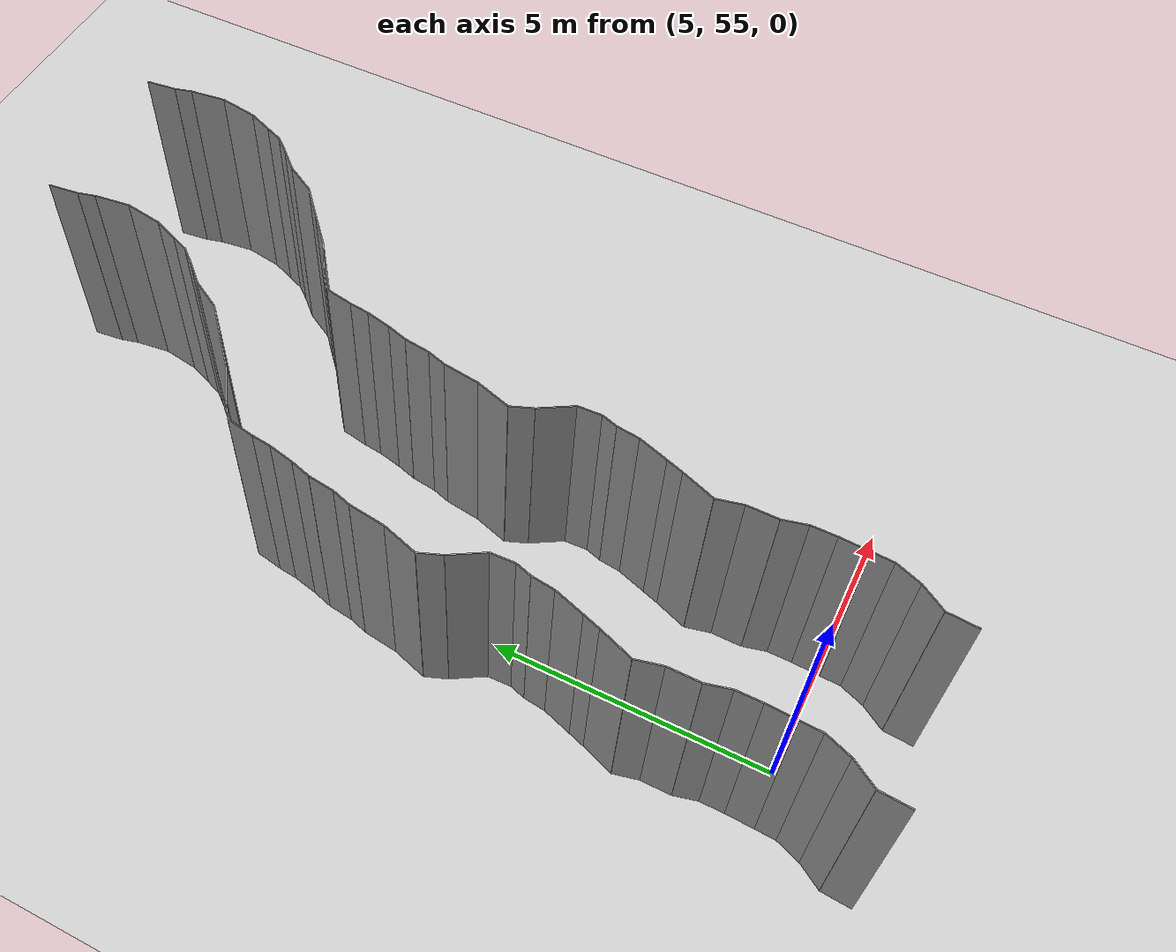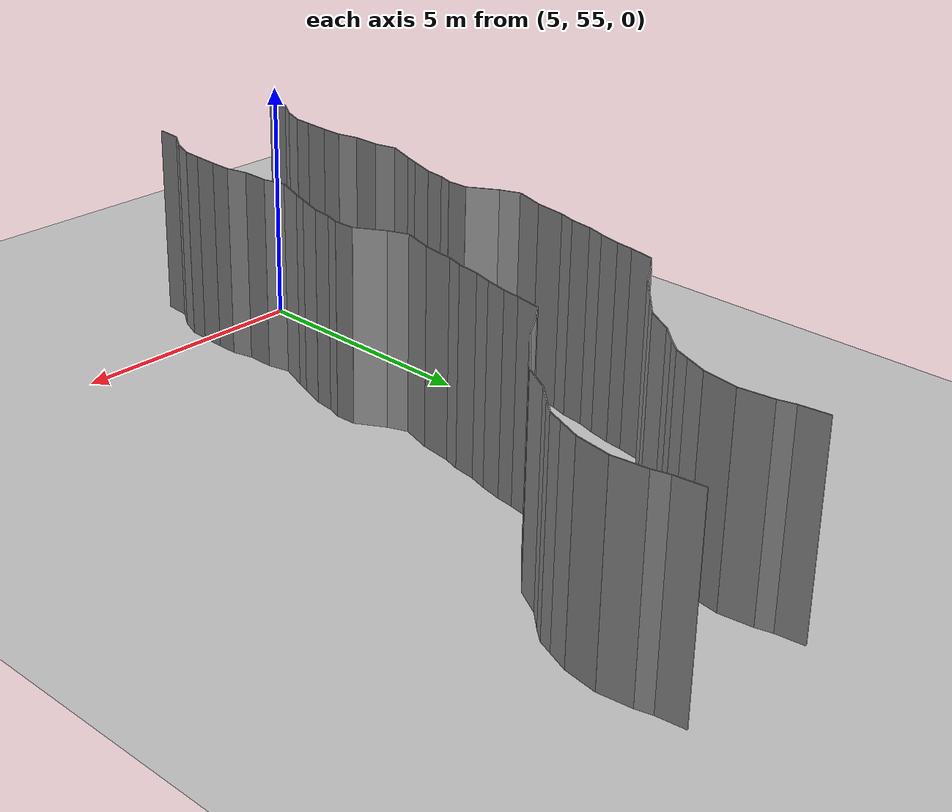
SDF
<sdf version="1.6">
 <world name="default">
  <model name="ground_plane">
   <static>1</static>
   <link name="link">
    <collision name="collision">
     <geometry><plane><normal>0 0 1</normal><size>200 200</size></plane></geometry>
     <surface><friction><ode><mu>100</mu><mu2>50</mu2></ode></friction></surface>
    </collision>
    <visual name="visual">
     <cast_shadows>0</cast_shadows>
     <geometry><plane><normal>0 0 1</normal><size>200 200</size></plane></geometry>
     <material>
      <script><uri>file://media/materials/scripts/gazebo.material</uri><name>Gazebo/Grey</name></script>
     </material>
    </visual>
   </link>
   <pose>0 100 0 0 -0 0</pose>
  </model>
  <model name="wall_224">
   <static>1</static>
   <pose>3.528602064961862 53.39156502885938 2 0 0 -0.06833943540551042</pose>
   <link name="link">
    <collision name="collision"><geometry><box><size>0.02 0.540682157796 4</size></box></geometry></collision>
    <visual name="visual">
     <material>
      <script><name>Gazebo/Grey</name><uri>file://media/materials/scripts/gazebo.material</uri></script>
     </material>
     <geometry><box><size>0.02 0.540682157796 4</size></box></geometry>
    </visual>
   </link>
  </model>
  <model name="wall_225">
   <static>1</static>
   <pose>6.528602064961862 53.39156502885938 2 0 0 -0.06833943540551042</pose>
   <link name="link">
    <collision name="collision"><geometry><box><size>0.02 0.540682157796 4</size></box></geometry></collision>
    <visual name="visual">
     <material>
      <script><name>Gazebo/Grey</name><uri>file://media/materials/scripts/gazebo.material</uri></script>
     </material>
     <geometry><box><size>0.02 0.540682157796 4</size></box></geometry>
    </visual>
   </link>
  </model>
  <model name="wall_226">
   <static>1</static>
   <pose>3.6866716017015992 53.87652328336533 2 0 0 -0.5753870255343632</pose>
   <link name="link">
    <collision name="collision"><geometry><box><size>0.02 0.513117743096 4</size></box></geometry></collision>
    <visual name="visual">
     <material>
      <script><name>Gazebo/Grey</name><uri>file://media/materials/scripts/gazebo.material</uri></script>
     </material>
     <geometry><box><size>0.02 0.513117743096 4</size></box></geometry>
    </visual>
   </link>
  </model>
  <model name="wall_227">
   <static>1</static>
   <pose>6.686671601701599 53.87652328336533 2 0 0 -0.5753870255343632</pose>
   <link name="link">
    <collision name="collision"><geometry><box><size>0.02 0.513117743096 4</size></box></geometry></collision>
    <visual name="visual">
     <material>
      <script><name>Gazebo/Grey</name><uri>file://media/materials/scripts/gazebo.material</uri></script>
     </material>
     <geometry><box><size>0.02 0.513117743096 4</size></box></geometry>
    </visual>
   </link>
  </model>
  <model name="wall_228">
   <static>1</static>
   <pose>3.9110661200531367 54.31562138466196 2 0 0 -0.3620637215636014</pose>
   <link name="link">
    <collision name="collision"><geometry><box><size>0.02 0.478737353523 4</size></box></geometry></collision>
    <visual name="visual">
     <material>
      <script><name>Gazebo/Grey</name><uri>file://media/materials/scripts/gazebo.material</uri></script>
     </material>
     <geometry><box><size>0.02 0.478737353523 4</size></box></geometry>
    </visual>
   </link>
  </model>
  <model name="wall_229">
   <static>1</static>
   <pose>6.911066120053137 54.31562138466196 2 0 0 -0.3620637215636014</pose>
   <link name="link">
    <collision name="collision"><geometry><box><size>0.02 0.478737353523 4</size></box></geometry></collision>
    <visual name="visual">
     <material>
      <script><name>Gazebo/Grey</name><uri>file://media/materials/scripts/gazebo.material</uri></script>
     </material>
     <geometry><box><size>0.02 0.478737353523 4</size></box></geometry>
    </visual>
   </link>
  </model>
  <model name="wall_230">
   <static>1</static>
   <pose>4.004229657695501 54.72682308637907 2 0 0 -0.04468811136336056</pose>
   <link name="link">
    <collision name="collision"><geometry><box><size>0.02 0.375078087131 4</size></box></geometry></collision>
    <visual name="visual">
     <material>
      <script><name>Gazebo/Grey</name><uri>file://media/materials/scripts/gazebo.material</uri></script>
     </material>
     <geometry><box><size>0.02 0.375078087131 4</size></box></geometry>
    </visual>
   </link>
  </model>
  <model name="wall_231">
   <static>1</static>
   <pose>7.004229657695501 54.72682308637907 2 0 0 -0.04468811136336056</pose>
   <link name="link">
    <collision name="collision"><geometry><box><size>0.02 0.375078087131 4</size></box></geometry></collision>
    <visual name="visual">
     <material>
      <script><name>Gazebo/Grey</name><uri>file://media/materials/scripts/gazebo.material</uri></script>
     </material>
     <geometry><box><size>0.02 0.375078087131 4</size></box></geometry>
    </visual>
   </link>
  </model>
  <model name="wall_232">
   <static>1</static>
   <pose>4.023659175816504 55.169290138721486 2 0 0 -0.043292734498848684</pose>
   <link name="link">
    <collision name="collision"><geometry><box><size>0.02 0.51070900202 4</size></box></geometry></collision>
    <visual name="visual">
     <material>
      <script><name>Gazebo/Grey</name><uri>file://media/materials/scripts/gazebo.material</uri></script>
     </material>
     <geometry><box><size>0.02 0.51070900202 4</size></box></geometry>
    </visual>
   </link>
  </model>
  <model name="wall_233">
   <static>1</static>
   <pose>7.023659175816504 55.169290138721486 2 0 0 -0.043292734498848684</pose>
   <link name="link">
    <collision name="collision"><geometry><box><size>0.02 0.51070900202 4</size></box></geometry></collision>
    <visual name="visual">
     <material>
      <script><name>Gazebo/Grey</name><uri>file://media/materials/scripts/gazebo.material</uri></script>
     </material>
     <geometry><box><size>0.02 0.51070900202 4</size></box></geometry>
    </visual>
   </link>
  </model>
  <model name="wall_234">
   <static>1</static>
   <pose>4.0342566573391725 55.644065890135025 2 0 0 0.002067096349445945</pose>
   <link name="link">
    <collision name="collision"><geometry><box><size>0.02 0.439321965593 4</size></box></geometry></collision>
    <visual name="visual">
     <material>
      <script><name>Gazebo/Grey</name><uri>file://media/materials/scripts/gazebo.material</uri></script>
     </material>
     <geometry><box><size>0.02 0.439321965593 4</size></box></geometry>
    </visual>
   </link>
  </model>
  <model name="wall_235">
   <static>1</static>
   <pose>7.0342566573391725 55.644065890135025 2 0 0 0.002067096349445945</pose>
   <link name="link">
    <collision name="collision"><geometry><box><size>0.02 0.439321965593 4</size></box></geometry></collision>
    <visual name="visual">
     <material>
      <script><name>Gazebo/Grey</name><uri>file://media/materials/scripts/gazebo.material</uri></script>
     </material>
     <geometry><box><size>0.02 0.439321965593 4</size></box></geometry>
    </visual>
   </link>
  </model>
  <model name="wall_236">
   <static>1</static>
   <pose>3.9800580914950845 56.07680824205318 2 0 0 0.2470714130610524</pose>
   <link name="link">
    <collision name="collision"><geometry><box><size>0.02 0.43951037194 4</size></box></geometry></collision>
    <visual name="visual">
     <material>
      <script><name>Gazebo/Grey</name><uri>file://media/materials/scripts/gazebo.material</uri></script>
     </material>
     <geometry><box><size>0.02 0.43951037194 4</size></box></geometry>
    </visual>
   </link>
  </model>
  <model name="wall_237">
   <static>1</static>
   <pose>6.980058091495085 56.07680824205318 2 0 0 0.2470714130610524</pose>
   <link name="link">
    <collision name="collision"><geometry><box><size>0.02 0.43951037194 4</size></box></geometry></collision>
    <visual name="visual">
     <material>
      <script><name>Gazebo/Grey</name><uri>file://media/materials/scripts/gazebo.material</uri></script>
     </material>
     <geometry><box><size>0.02 0.43951037194 4</size></box></geometry>
    </visual>
   </link>
  </model>
  <model name="wall_238">
   <static>1</static>
   <pose>3.9268968259553887 56.56647347405353 2 0 0 -0.0021087287274510333</pose>
   <link name="link">
    <collision name="collision"><geometry><box><size>0.02 0.553168017067 4</size></box></geometry></collision>
    <visual name="visual">
     <material>
      <script><name>Gazebo/Grey</name><uri>file://media/materials/scripts/gazebo.material</uri></script>
     </material>
     <geometry><box><size>0.02 0.553168017067 4</size></box></geometry>
    </visual>
   </link>
  </model>
  <model name="wall_239">
   <static>1</static>
   <pose>6.926896825955389 56.56647347405353 2 0 0 -0.0021087287274510333</pose>
   <link name="link">
    <collision name="collision"><geometry><box><size>0.02 0.553168017067 4</size></box></geometry></collision>
    <visual name="visual">
     <material>
      <script><name>Gazebo/Grey</name><uri>file://media/materials/scripts/gazebo.material</uri></script>
     </material>
     <geometry><box><size>0.02 0.553168017067 4</size></box></geometry>
    </visual>
   </link>
  </model>
  <model name="wall_240">
   <static>1</static>
   <pose>3.8729214862886177 57.07105964475495 2 0 0 0.23487269232823726</pose>
   <link name="link">
    <collision name="collision"><geometry><box><size>0.02 0.468879110266 4</size></box></geometry></collision>
    <visual name="visual">
     <material>
      <script><name>Gazebo/Grey</name><uri>file://media/materials/scripts/gazebo.material</uri></script>
     </material>
     <geometry><box><size>0.02 0.468879110266 4</size></box></geometry>
    </visual>
   </link>
  </model>
  <model name="wall_241">
   <static>1</static>
   <pose>6.872921486288618 57.07105964475495 2 0 0 0.23487269232823726</pose>
   <link name="link">
    <collision name="collision"><geometry><box><size>0.02 0.468879110266 4</size></box></geometry></collision>
    <visual name="visual">
     <material>
      <script><name>Gazebo/Grey</name><uri>file://media/materials/scripts/gazebo.material</uri></script>
     </material>
     <geometry><box><size>0.02 0.468879110266 4</size></box></geometry>
    </visual>
   </link>
  </model>
  <model name="wall_242">
   <static>1</static>
   <pose>3.929274676599654 57.59708809742566 2 0 0 -0.3562741671204502</pose>
   <link name="link">
    <collision name="collision"><geometry><box><size>0.02 0.635989698208 4</size></box></geometry></collision>
    <visual name="visual">
     <material>
      <script><name>Gazebo/Grey</name><uri>file://media/materials/scripts/gazebo.material</uri></script>
     </material>
     <geometry><box><size>0.02 0.635989698208 4</size></box></geometry>
    </visual>
   </link>
  </model>
  <model name="wall_243">
   <static>1</static>
   <pose>6.929274676599654 57.59708809742566 2 0 0 -0.3562741671204502</pose>
   <link name="link">
    <collision name="collision"><geometry><box><size>0.02 0.635989698208 4</size></box></geometry></collision>
    <visual name="visual">
     <material>
      <script><name>Gazebo/Grey</name><uri>file://media/materials/scripts/gazebo.material</uri></script>
     </material>
     <geometry><box><size>0.02 0.635989698208 4</size></box></geometry>
    </visual>
   </link>
  </model>
  <model name="wall_244">
   <static>1</static>
   <pose>4.090060201565586 58.045175102419435 2 0 0 -0.32087052603320987</pose>
   <link name="link">
    <collision name="collision"><geometry><box><size>0.02 0.316264408421 4</size></box></geometry></collision>
    <visual name="visual">
     <material>
      <script><name>Gazebo/Grey</name><uri>file://media/materials/scripts/gazebo.material</uri></script>
     </material>
     <geometry><box><size>0.02 0.316264408421 4</size></box></geometry>
    </visual>
   </link>
  </model>
  <model name="wall_245">
   <static>1</static>
   <pose>7.090060201565586 58.045175102419435 2 0 0 -0.32087052603320987</pose>
   <link name="link">
    <collision name="collision"><geometry><box><size>0.02 0.316264408421 4</size></box></geometry></collision>
    <visual name="visual">
     <material>
      <script><name>Gazebo/Grey</name><uri>file://media/materials/scripts/gazebo.material</uri></script>
     </material>
     <geometry><box><size>0.02 0.316264408421 4</size></box></geometry>
    </visual>
   </link>
  </model>
  <model name="wall_246">
   <static>1</static>
   <pose>4.228202553277251 58.46247019786226 2 0 0 -0.319022406863681</pose>
   <link name="link">
    <collision name="collision"><geometry><box><size>0.02 0.562868478057 4</size></box></geometry></collision>
    <visual name="visual">
     <material>
      <script><name>Gazebo/Grey</name><uri>file://media/materials/scripts/gazebo.material</uri></script>
     </material>
     <geometry><box><size>0.02 0.562868478057 4</size></box></geometry>
    </visual>
   </link>
  </model>
  <model name="wall_247">
   <static>1</static>
   <pose>7.228202553277251 58.46247019786226 2 0 0 -0.319022406863681</pose>
   <link name="link">
    <collision name="collision"><geometry><box><size>0.02 0.562868478057 4</size></box></geometry></collision>
    <visual name="visual">
     <material>
      <script><name>Gazebo/Grey</name><uri>file://media/materials/scripts/gazebo.material</uri></script>
     </material>
     <geometry><box><size>0.02 0.562868478057 4</size></box></geometry>
    </visual>
   </link>
  </model>
  <model name="wall_248">
   <static>1</static>
   <pose>4.341280597745392 58.93304401421474 2 0 0 -0.12140957032669356</pose>
   <link name="link">
    <collision name="collision"><geometry><box><size>0.02 0.409695910464 4</size></box></geometry></collision>
    <visual name="visual">
     <material>
      <script><name>Gazebo/Grey</name><uri>file://media/materials/scripts/gazebo.material</uri></script>
     </material>
     <geometry><box><size>0.02 0.409695910464 4</size></box></geometry>
    </visual>
   </link>
  </model>
  <model name="wall_249">
   <static>1</static>
   <pose>7.341280597745392 58.93304401421474 2 0 0 -0.12140957032669356</pose>
   <link name="link">
    <collision name="collision"><geometry><box><size>0.02 0.409695910464 4</size></box></geometry></collision>
    <visual name="visual">
     <material>
      <script><name>Gazebo/Grey</name><uri>file://media/materials/scripts/gazebo.material</uri></script>
     </material>
     <geometry><box><size>0.02 0.409695910464 4</size></box></geometry>
    </visual>
   </link>
  </model>
  <model name="wall_250">
   <static>1</static>
   <pose>4.4108826629741165 59.279692127652034 2 0 0 -0.3029411154012513</pose>
   <link name="link">
    <collision name="collision"><geometry><box><size>0.02 0.300290389765 4</size></box></geometry></collision>
    <visual name="visual">
     <material>
      <script><name>Gazebo/Grey</name><uri>file://media/materials/scripts/gazebo.material</uri></script>
     </material>
     <geometry><box><size>0.02 0.300290389765 4</size></box></geometry>
    </visual>
   </link>
  </model>
  <model name="wall_251">
   <static>1</static>
   <pose>7.4108826629741165 59.279692127652034 2 0 0 -0.3029411154012513</pose>
   <link name="link">
    <collision name="collision"><geometry><box><size>0.02 0.300290389765 4</size></box></geometry></collision>
    <visual name="visual">
     <material>
      <script><name>Gazebo/Grey</name><uri>file://media/materials/scripts/gazebo.material</uri></script>
     </material>
     <geometry><box><size>0.02 0.300290389765 4</size></box></geometry>
    </visual>
   </link>
  </model>
  <model name="wall_252">
   <static>1</static>
   <pose>4.447151146654677 59.63689699383404 2 0 0 0.03983054280648641</pose>
   <link name="link">
    <collision name="collision"><geometry><box><size>0.02 0.428133171965 4</size></box></geometry></collision>
    <visual name="visual">
     <material>
      <script><name>Gazebo/Grey</name><uri>file://media/materials/scripts/gazebo.material</uri></script>
     </material>
     <geometry><box><size>0.02 0.428133171965 4</size></box></geometry>
    </visual>
   </link>
  </model>
  <model name="wall_253">
   <static>1</static>
   <pose>7.447151146654677 59.63689699383404 2 0 0 0.03983054280648641</pose>
   <link name="link">
    <collision name="collision"><geometry><box><size>0.02 0.428133171965 4</size></box></geometry></collision>
    <visual name="visual">
     <material>
      <script><name>Gazebo/Grey</name><uri>file://media/materials/scripts/gazebo.material</uri></script>
     </material>
     <geometry><box><size>0.02 0.428133171965 4</size></box></geometry>
    </visual>
   </link>
  </model>
  <model name="wall_254">
   <static>1</static>
   <pose>4.268252847930529 60.131867418762894 2 0 0 0.5449329058073904</pose>
   <link name="link">
    <collision name="collision"><geometry><box><size>0.02 0.657357549259 4</size></box></geometry></collision>
    <visual name="visual">
     <material>
      <script><name>Gazebo/Grey</name><uri>file://media/materials/scripts/gazebo.material</uri></script>
     </material>
     <geometry><box><size>0.02 0.657357549259 4</size></box></geometry>
    </visual>
   </link>
  </model>
  <model name="wall_255">
   <static>1</static>
   <pose>7.268252847930529 60.131867418762894 2 0 0 0.5449329058073904</pose>
   <link name="link">
    <collision name="collision"><geometry><box><size>0.02 0.657357549259 4</size></box></geometry></collision>
    <visual name="visual">
     <material>
      <script><name>Gazebo/Grey</name><uri>file://media/materials/scripts/gazebo.material</uri></script>
     </material>
     <geometry><box><size>0.02 0.657357549259 4</size></box></geometry>
    </visual>
   </link>
  </model>
  <model name="wall_256">
   <static>1</static>
   <pose>4.018874838290384 60.60982653740761 2 0 0 0.3815989822524065</pose>
   <link name="link">
    <collision name="collision"><geometry><box><size>0.02 0.424290025185 4</size></box></geometry></collision>
    <visual name="visual">
     <material>
      <script><name>Gazebo/Grey</name><uri>file://media/materials/scripts/gazebo.material</uri></script>
     </material>
     <geometry><box><size>0.02 0.424290025185 4</size></box></geometry>
    </visual>
   </link>
  </model>
  <model name="wall_257">
   <static>1</static>
   <pose>7.018874838290384 60.60982653740761 2 0 0 0.3815989822524065</pose>
   <link name="link">
    <collision name="collision"><geometry><box><size>0.02 0.424290025185 4</size></box></geometry></collision>
    <visual name="visual">
     <material>
      <script><name>Gazebo/Grey</name><uri>file://media/materials/scripts/gazebo.material</uri></script>
     </material>
     <geometry><box><size>0.02 0.424290025185 4</size></box></geometry>
    </visual>
   </link>
  </model>
  <model name="wall_258">
   <static>1</static>
   <pose>4.0380190093582184 61.12320005678419 2 0 0 -0.3007115435823998</pose>
   <link name="link">
    <collision name="collision"><geometry><box><size>0.02 0.662714724367 4</size></box></geometry></collision>
    <visual name="visual">
     <material>
      <script><name>Gazebo/Grey</name><uri>file://media/materials/scripts/gazebo.material</uri></script>
     </material>
     <geometry><box><size>0.02 0.662714724367 4</size></box></geometry>
    </visual>
   </link>
  </model>
  <model name="wall_259">
   <static>1</static>
   <pose>7.0380190093582184 61.12320005678419 2 0 0 -0.3007115435823998</pose>
   <link name="link">
    <collision name="collision"><geometry><box><size>0.02 0.662714724367 4</size></box></geometry></collision>
    <visual name="visual">
     <material>
      <script><name>Gazebo/Grey</name><uri>file://media/materials/scripts/gazebo.material</uri></script>
     </material>
     <geometry><box><size>0.02 0.662714724367 4</size></box></geometry>
    </visual>
   </link>
  </model>
  <model name="wall_260">
   <static>1</static>
   <pose>4.1783843597997405 61.76304033441299 2 0 0 -0.12982706883605621</pose>
   <link name="link">
    <collision name="collision"><geometry><box><size>0.02 0.652193174391 4</size></box></geometry></collision>
    <visual name="visual">
     <material>
      <script><name>Gazebo/Grey</name><uri>file://media/materials/scripts/gazebo.material</uri></script>
     </material>
     <geometry><box><size>0.02 0.652193174391 4</size></box></geometry>
    </visual>
   </link>
  </model>
  <model name="wall_261">
   <static>1</static>
   <pose>7.1783843597997405 61.76304033441299 2 0 0 -0.12982706883605621</pose>
   <link name="link">
    <collision name="collision"><geometry><box><size>0.02 0.652193174391 4</size></box></geometry></collision>
    <visual name="visual">
     <material>
      <script><name>Gazebo/Grey</name><uri>file://media/materials/scripts/gazebo.material</uri></script>
     </material>
     <geometry><box><size>0.02 0.652193174391 4</size></box></geometry>
    </visual>
   </link>
  </model>
  <model name="wall_262">
   <static>1</static>
   <pose>4.271302788716039 62.25195672169262 2 0 0 -0.29716470033785963</pose>
   <link name="link">
    <collision name="collision"><geometry><box><size>0.02 0.346306701397 4</size></box></geometry></collision>
    <visual name="visual">
     <material>
      <script><name>Gazebo/Grey</name><uri>file://media/materials/scripts/gazebo.material</uri></script>
     </material>
     <geometry><box><size>0.02 0.346306701397 4</size></box></geometry>
    </visual>
   </link>
  </model>
  <model name="wall_263">
   <static>1</static>
   <pose>7.271302788716039 62.25195672169262 2 0 0 -0.29716470033785963</pose>
   <link name="link">
    <collision name="collision"><geometry><box><size>0.02 0.346306701397 4</size></box></geometry></collision>
    <visual name="visual">
     <material>
      <script><name>Gazebo/Grey</name><uri>file://media/materials/scripts/gazebo.material</uri></script>
     </material>
     <geometry><box><size>0.02 0.346306701397 4</size></box></geometry>
    </visual>
   </link>
  </model>
  <model name="wall_264">
   <static>1</static>
   <pose>4.352003141832562 62.649567837336434 2 0 0 -0.1285678568704608</pose>
   <link name="link">
    <collision name="collision"><geometry><box><size>0.02 0.467956228876 4</size></box></geometry></collision>
    <visual name="visual">
     <material>
      <script><name>Gazebo/Grey</name><uri>file://media/materials/scripts/gazebo.material</uri></script>
     </material>
     <geometry><box><size>0.02 0.467956228876 4</size></box></geometry>
    </visual>
   </link>
  </model>
  <model name="wall_265">
   <static>1</static>
   <pose>7.352003141832562 62.649567837336434 2 0 0 -0.1285678568704608</pose>
   <link name="link">
    <collision name="collision"><geometry><box><size>0.02 0.467956228876 4</size></box></geometry></collision>
    <visual name="visual">
     <material>
      <script><name>Gazebo/Grey</name><uri>file://media/materials/scripts/gazebo.material</uri></script>
     </material>
     <geometry><box><size>0.02 0.467956228876 4</size></box></geometry>
    </visual>
   </link>
  </model>
  <model name="wall_266">
   <static>1</static>
   <pose>4.435221240937296 63.063243304691895 2 0 0 -0.28503106107147885</pose>
   <link name="link">
    <collision name="collision"><geometry><box><size>0.02 0.378529529389 4</size></box></geometry></collision>
    <visual name="visual">
     <material>
      <script><name>Gazebo/Grey</name><uri>file://media/materials/scripts/gazebo.material</uri></script>
     </material>
     <geometry><box><size>0.02 0.378529529389 4</size></box></geometry>
    </visual>
   </link>
  </model>
  <model name="wall_267">
   <static>1</static>
   <pose>7.435221240937296 63.063243304691895 2 0 0 -0.28503106107147885</pose>
   <link name="link">
    <collision name="collision"><geometry><box><size>0.02 0.378529529389 4</size></box></geometry></collision>
    <visual name="visual">
     <material>
      <script><name>Gazebo/Grey</name><uri>file://media/materials/scripts/gazebo.material</uri></script>
     </material>
     <geometry><box><size>0.02 0.378529529389 4</size></box></geometry>
    </visual>
   </link>
  </model>
  <model name="wall_268">
   <static>1</static>
   <pose>4.537605531496459 63.468987772844045 2 0 0 -0.21595410613075985</pose>
   <link name="link">
    <collision name="collision"><geometry><box><size>0.02 0.458890905846 4</size></box></geometry></collision>
    <visual name="visual">
     <material>
      <script><name>Gazebo/Grey</name><uri>file://media/materials/scripts/gazebo.material</uri></script>
     </material>
     <geometry><box><size>0.02 0.458890905846 4</size></box></geometry>
    </visual>
   </link>
  </model>
  <model name="wall_269">
   <static>1</static>
   <pose>7.537605531496459 63.468987772844045 2 0 0 -0.21595410613075985</pose>
   <link name="link">
    <collision name="collision"><geometry><box><size>0.02 0.458890905846 4</size></box></geometry></collision>
    <visual name="visual">
     <material>
      <script><name>Gazebo/Grey</name><uri>file://media/materials/scripts/gazebo.material</uri></script>
     </material>
     <geometry><box><size>0.02 0.458890905846 4</size></box></geometry>
    </visual>
   </link>
  </model>
  <model name="wall_270">
   <static>1</static>
   <pose>4.60682952119599 63.86784541338964 2 0 0 -0.11428945145910921</pose>
   <link name="link">
    <collision name="collision"><geometry><box><size>0.02 0.351778290778 4</size></box></geometry></collision>
    <visual name="visual">
     <material>
      <script><name>Gazebo/Grey</name><uri>file://media/materials/scripts/gazebo.material</uri></script>
     </material>
     <geometry><box><size>0.02 0.351778290778 4</size></box></geometry>
    </visual>
   </link>
  </model>
  <model name="wall_271">
   <static>1</static>
   <pose>7.60682952119599 63.86784541338964 2 0 0 -0.11428945145910921</pose>
   <link name="link">
    <collision name="collision"><geometry><box><size>0.02 0.351778290778 4</size></box></geometry></collision>
    <visual name="visual">
     <material>
      <script><name>Gazebo/Grey</name><uri>file://media/materials/scripts/gazebo.material</uri></script>
     </material>
     <geometry><box><size>0.02 0.351778290778 4</size></box></geometry>
    </visual>
   </link>
  </model>
  <model name="wall_272">
   <static>1</static>
   <pose>4.671996991251923 64.29292832917636 2 0 0 -0.17827673297622124</pose>
   <link name="link">
    <collision name="collision"><geometry><box><size>0.02 0.508745758887 4</size></box></geometry></collision>
    <visual name="visual">
     <material>
      <script><name>Gazebo/Grey</name><uri>file://media/materials/scripts/gazebo.material</uri></script>
     </material>
     <geometry><box><size>0.02 0.508745758887 4</size></box></geometry>
    </visual>
   </link>
  </model>
  <model name="wall_273">
   <static>1</static>
   <pose>7.671996991251923 64.29292832917636 2 0 0 -0.17827673297622124</pose>
   <link name="link">
    <collision name="collision"><geometry><box><size>0.02 0.508745758887 4</size></box></geometry></collision>
    <visual name="visual">
     <material>
      <script><name>Gazebo/Grey</name><uri>file://media/materials/scripts/gazebo.material</uri></script>
     </material>
     <geometry><box><size>0.02 0.508745758887 4</size></box></geometry>
    </visual>
   </link>
  </model>
  <model name="wall_274">
   <static>1</static>
   <pose>4.860281820703805 64.6546518216947 2 0 0 -0.9096522012797114</pose>
   <link name="link">
    <collision name="collision"><geometry><box><size>0.02 0.362796581541 4</size></box></geometry></collision>
    <visual name="visual">
     <material>
      <script><name>Gazebo/Grey</name><uri>file://media/materials/scripts/gazebo.material</uri></script>
     </material>
     <geometry><box><size>0.02 0.362796581541 4</size></box></geometry>
    </visual>
   </link>
  </model>
  <model name="wall_275">
   <static>1</static>
   <pose>7.860281820703805 64.6546518216947 2 0 0 -0.9096522012797114</pose>
   <link name="link">
    <collision name="collision"><geometry><box><size>0.02 0.362796581541 4</size></box></geometry></collision>
    <visual name="visual">
     <material>
      <script><name>Gazebo/Grey</name><uri>file://media/materials/scripts/gazebo.material</uri></script>
     </material>
     <geometry><box><size>0.02 0.362796581541 4</size></box></geometry>
    </visual>
   </link>
  </model>
  <model name="wall_276">
   <static>1</static>
   <pose>5.28713464791524 64.94833682999626 2 0 0 -0.999610926387166</pose>
   <link name="link">
    <collision name="collision"><geometry><box><size>0.02 0.67440907901 4</size></box></geometry></collision>
    <visual name="visual">
     <material>
      <script><name>Gazebo/Grey</name><uri>file://media/materials/scripts/gazebo.material</uri></script>
     </material>
     <geometry><box><size>0.02 0.67440907901 4</size></box></geometry>
    </visual>
   </link>
  </model>
  <model name="wall_277">
   <static>1</static>
   <pose>8.28713464791524 64.94833682999626 2 0 0 -0.999610926387166</pose>
   <link name="link">
    <collision name="collision"><geometry><box><size>0.02 0.67440907901 4</size></box></geometry></collision>
    <visual name="visual">
     <material>
      <script><name>Gazebo/Grey</name><uri>file://media/materials/scripts/gazebo.material</uri></script>
     </material>
     <geometry><box><size>0.02 0.67440907901 4</size></box></geometry>
    </visual>
   </link>
  </model>
  <model name="wall_278">
   <static>1</static>
   <pose>5.82949895744827 65.36154393400774 2 0 0 -0.8420847586363052</pose>
   <link name="link">
    <collision name="collision"><geometry><box><size>0.02 0.693501176053 4</size></box></geometry></collision>
    <visual name="visual">
     <material>
      <script><name>Gazebo/Grey</name><uri>file://media/materials/scripts/gazebo.material</uri></script>
     </material>
     <geometry><box><size>0.02 0.693501176053 4</size></box></geometry>
    </visual>
   </link>
  </model>
  <model name="wall_279">
   <static>1</static>
   <pose>8.82949895744827 65.36154393400774 2 0 0 -0.8420847586363052</pose>
   <link name="link">
    <collision name="collision"><geometry><box><size>0.02 0.693501176053 4</size></box></geometry></collision>
    <visual name="visual">
     <material>
      <script><name>Gazebo/Grey</name><uri>file://media/materials/scripts/gazebo.material</uri></script>
     </material>
     <geometry><box><size>0.02 0.693501176053 4</size></box></geometry>
    </visual>
   </link>
  </model>
  <model name="wall_280">
   <static>1</static>
   <pose>6.321043814886611 65.79686515697482 2 0 0 -0.8503472696587449</pose>
   <link name="link">
    <collision name="collision"><geometry><box><size>0.02 0.619705965178 4</size></box></geometry></collision>
    <visual name="visual">
     <material>
      <script><name>Gazebo/Grey</name><uri>file://media/materials/scripts/gazebo.material</uri></script>
     </material>
     <geometry><box><size>0.02 0.619705965178 4</size></box></geometry>
    </visual>
   </link>
  </model>
  <model name="wall_281">
   <static>1</static>
   <pose>9.321043814886611 65.79686515697482 2 0 0 -0.8503472696587449</pose>
   <link name="link">
    <collision name="collision"><geometry><box><size>0.02 0.619705965178 4</size></box></geometry></collision>
    <visual name="visual">
     <material>
      <script><name>Gazebo/Grey</name><uri>file://media/materials/scripts/gazebo.material</uri></script>
     </material>
     <geometry><box><size>0.02 0.619705965178 4</size></box></geometry>
    </visual>
   </link>
  </model>
  <model name="wall_282">
   <static>1</static>
   <pose>6.704248426577353 66.26622779595861 2 0 0 -0.5161522290944258</pose>
   <link name="link">
    <collision name="collision"><geometry><box><size>0.02 0.609263518858 4</size></box></geometry></collision>
    <visual name="visual">
     <material>
      <script><name>Gazebo/Grey</name><uri>file://media/materials/scripts/gazebo.material</uri></script>
     </material>
     <geometry><box><size>0.02 0.609263518858 4</size></box></geometry>
    </visual>
   </link>
  </model>
  <model name="wall_283">
   <static>1</static>
   <pose>9.704248426577353 66.26622779595861 2 0 0 -0.5161522290944258</pose>
   <link name="link">
    <collision name="collision"><geometry><box><size>0.02 0.609263518858 4</size></box></geometry></collision>
    <visual name="visual">
     <material>
      <script><name>Gazebo/Grey</name><uri>file://media/materials/scripts/gazebo.material</uri></script>
     </material>
     <geometry><box><size>0.02 0.609263518858 4</size></box></geometry>
    </visual>
   </link>
  </model>
  <model name="wall_284">
   <static>1</static>
   <pose>7.014540868679097 66.70278955244378 2 0 0 -0.7502134534646279</pose>
   <link name="link">
    <collision name="collision"><geometry><box><size>0.02 0.469188902485 4</size></box></geometry></collision>
    <visual name="visual">
     <material>
      <script><name>Gazebo/Grey</name><uri>file://media/materials/scripts/gazebo.material</uri></script>
     </material>
     <geometry><box><size>0.02 0.469188902485 4</size></box></geometry>
    </visual>
   </link>
  </model>
  <model name="wall_285">
   <static>1</static>
   <pose>10.014540868679097 66.70278955244378 2 0 0 -0.7502134534646279</pose>
   <link name="link">
    <collision name="collision"><geometry><box><size>0.02 0.469188902485 4</size></box></geometry></collision>
    <visual name="visual">
     <material>
      <script><name>Gazebo/Grey</name><uri>file://media/materials/scripts/gazebo.material</uri></script>
     </material>
     <geometry><box><size>0.02 0.469188902485 4</size></box></geometry>
    </visual>
   </link>
  </model>
  <model name="wall_286">
   <static>1</static>
   <pose>7.2844028852793 67.00531328651043 2 0 0 -0.6984547666108847</pose>
   <link name="link">
    <collision name="collision"><geometry><box><size>0.02 0.341868483058 4</size></box></geometry></collision>
    <visual name="visual">
     <material>
      <script><name>Gazebo/Grey</name><uri>file://media/materials/scripts/gazebo.material</uri></script>
     </material>
     <geometry><box><size>0.02 0.341868483058 4</size></box></geometry>
    </visual>
   </link>
  </model>
  <model name="wall_287">
   <static>1</static>
   <pose>10.284402885279299 67.00531328651043 2 0 0 -0.6984547666108847</pose>
   <link name="link">
    <collision name="collision"><geometry><box><size>0.02 0.341868483058 4</size></box></geometry></collision>
    <visual name="visual">
     <material>
      <script><name>Gazebo/Grey</name><uri>file://media/materials/scripts/gazebo.material</uri></script>
     </material>
     <geometry><box><size>0.02 0.341868483058 4</size></box></geometry>
    </visual>
   </link>
  </model>
  <model name="wall_288">
   <static>1</static>
   <pose>7.454537713117491 67.28818226136099 2 0 0 -0.37728918823937624</pose>
   <link name="link">
    <collision name="collision"><geometry><box><size>0.02 0.326915548514 4</size></box></geometry></collision>
    <visual name="visual">
     <material>
      <script><name>Gazebo/Grey</name><uri>file://media/materials/scripts/gazebo.material</uri></script>
     </material>
     <geometry><box><size>0.02 0.326915548514 4</size></box></geometry>
    </visual>
   </link>
  </model>
  <model name="wall_289">
   <static>1</static>
   <pose>10.45453771311749 67.28818226136099 2 0 0 -0.37728918823937624</pose>
   <link name="link">
    <collision name="collision"><geometry><box><size>0.02 0.326915548514 4</size></box></geometry></collision>
    <visual name="visual">
     <material>
      <script><name>Gazebo/Grey</name><uri>file://media/materials/scripts/gazebo.material</uri></script>
     </material>
     <geometry><box><size>0.02 0.326915548514 4</size></box></geometry>
    </visual>
   </link>
  </model>
  <model name="wall_290">
   <static>1</static>
   <pose>7.602165938762586 67.65839866504228 2 0 0 -0.38093307223074047</pose>
   <link name="link">
    <collision name="collision"><geometry><box><size>0.02 0.470216282074 4</size></box></geometry></collision>
    <visual name="visual">
     <material>
      <script><name>Gazebo/Grey</name><uri>file://media/materials/scripts/gazebo.material</uri></script>
     </material>
     <geometry><box><size>0.02 0.470216282074 4</size></box></geometry>
    </visual>
   </link>
  </model>
  <model name="wall_291">
   <static>1</static>
   <pose>10.602165938762585 67.65839866504228 2 0 0 -0.38093307223074047</pose>
   <link name="link">
    <collision name="collision"><geometry><box><size>0.02 0.470216282074 4</size></box></geometry></collision>
    <visual name="visual">
     <material>
      <script><name>Gazebo/Grey</name><uri>file://media/materials/scripts/gazebo.material</uri></script>
     </material>
     <geometry><box><size>0.02 0.470216282074 4</size></box></geometry>
    </visual>
   </link>
  </model>
  <model name="wall_292">
   <static>1</static>
   <pose>7.741978422160692 68.22000259952956 2 0 0 -0.15145268289729158</pose>
   <link name="link">
    <collision name="collision"><geometry><box><size>0.02 0.694649252355 4</size></box></geometry></collision>
    <visual name="visual">
     <material>
      <script><name>Gazebo/Grey</name><uri>file://media/materials/scripts/gazebo.material</uri></script>
     </material>
     <geometry><box><size>0.02 0.694649252355 4</size></box></geometry>
    </visual>
   </link>
  </model>
  <model name="wall_293">
   <static>1</static>
   <pose>10.741978422160692 68.22000259952956 2 0 0 -0.15145268289729158</pose>
   <link name="link">
    <collision name="collision"><geometry><box><size>0.02 0.694649252355 4</size></box></geometry></collision>
    <visual name="visual">
     <material>
      <script><name>Gazebo/Grey</name><uri>file://media/materials/scripts/gazebo.material</uri></script>
     </material>
     <geometry><box><size>0.02 0.694649252355 4</size></box></geometry>
    </visual>
   </link>
  </model>
  <model name="wall_294">
   <static>1</static>
   <pose>7.752851859376642 68.88910699890478 2 0 0 0.12680096121707934</pose>
   <link name="link">
    <collision name="collision"><geometry><box><size>0.02 0.656784208475 4</size></box></geometry></collision>
    <visual name="visual">
     <material>
      <script><name>Gazebo/Grey</name><uri>file://media/materials/scripts/gazebo.material</uri></script>
     </material>
     <geometry><box><size>0.02 0.656784208475 4</size></box></geometry>
    </visual>
   </link>
  </model>
  <model name="wall_295">
   <static>1</static>
   <pose>10.75285185937664 68.88910699890478 2 0 0 0.12680096121707934</pose>
   <link name="link">
    <collision name="collision"><geometry><box><size>0.02 0.656784208475 4</size></box></geometry></collision>
    <visual name="visual">
     <material>
      <script><name>Gazebo/Grey</name><uri>file://media/materials/scripts/gazebo.material</uri></script>
     </material>
     <geometry><box><size>0.02 0.656784208475 4</size></box></geometry>
    </visual>
   </link>
  </model>
  <model name="wall_296">
   <static>1</static>
   <pose>7.668642479932979 69.37004572803846 2 0 0 0.2683966748599827</pose>
   <link name="link">
    <collision name="collision"><geometry><box><size>0.02 0.321890780436 4</size></box></geometry></collision>
    <visual name="visual">
     <material>
      <script><name>Gazebo/Grey</name><uri>file://media/materials/scripts/gazebo.material</uri></script>
     </material>
     <geometry><box><size>0.02 0.321890780436 4</size></box></geometry>
    </visual>
   </link>
  </model>
  <model name="wall_297">
   <static>1</static>
   <pose>10.668642479932979 69.37004572803846 2 0 0 0.2683966748599827</pose>
   <link name="link">
    <collision name="collision"><geometry><box><size>0.02 0.321890780436 4</size></box></geometry></collision>
    <visual name="visual">
     <material>
      <script><name>Gazebo/Grey</name><uri>file://media/materials/scripts/gazebo.material</uri></script>
     </material>
     <geometry><box><size>0.02 0.321890780436 4</size></box></geometry>
    </visual>
   </link>
  </model>
  <model name="wall_298">
   <static>1</static>
   <pose>7.591711801557181 69.80126506819417 2 0 0 0.12344784078026881</pose>
   <link name="link">
    <collision name="collision"><geometry><box><size>0.02 0.556305949723 4</size></box></geometry></collision>
    <visual name="visual">
     <material>
      <script><name>Gazebo/Grey</name><uri>file://media/materials/scripts/gazebo.material</uri></script>
     </material>
     <geometry><box><size>0.02 0.556305949723 4</size></box></geometry>
    </visual>
   </link>
  </model>
  <model name="wall_299">
   <static>1</static>
   <pose>10.591711801557182 69.80126506819417 2 0 0 0.12344784078026881</pose>
   <link name="link">
    <collision name="collision"><geometry><box><size>0.02 0.556305949723 4</size></box></geometry></collision>
    <visual name="visual">
     <material>
      <script><name>Gazebo/Grey</name><uri>file://media/materials/scripts/gazebo.material</uri></script>
     </material>
     <geometry><box><size>0.02 0.556305949723 4</size></box></geometry>
    </visual>
   </link>
  </model>
 </world>
</sdf>
